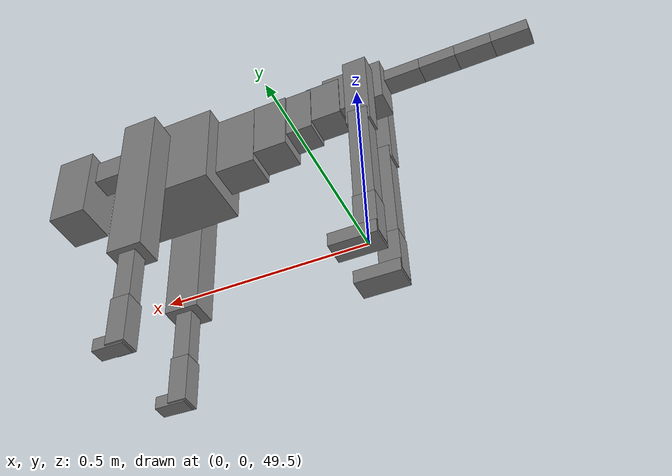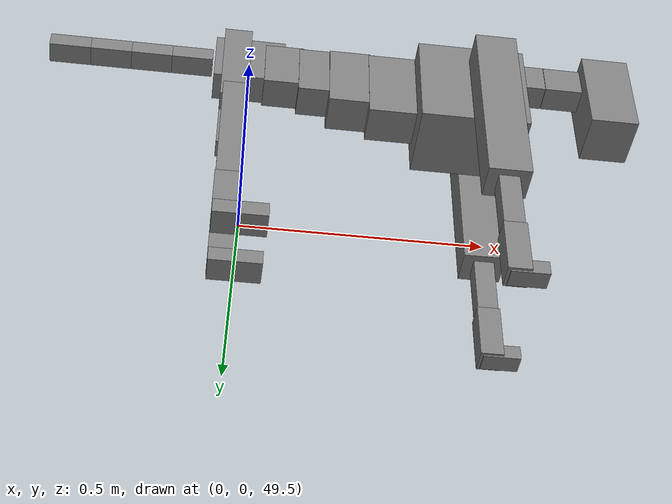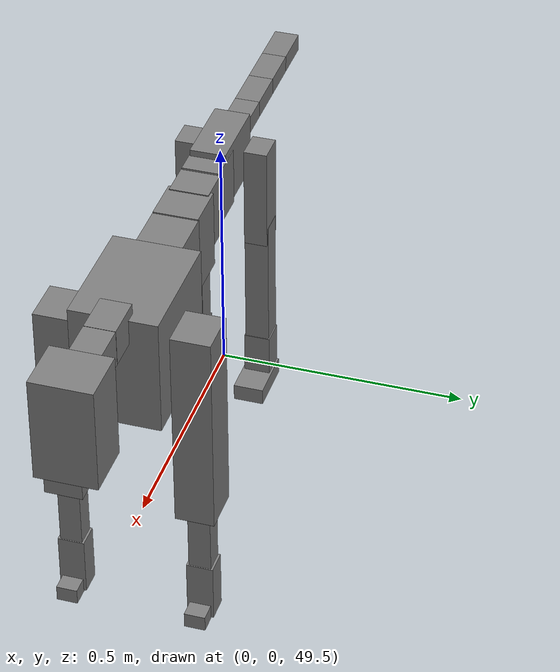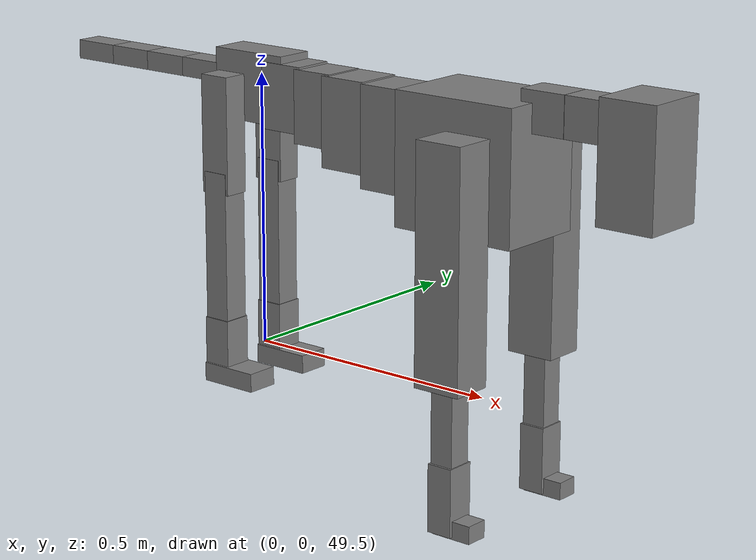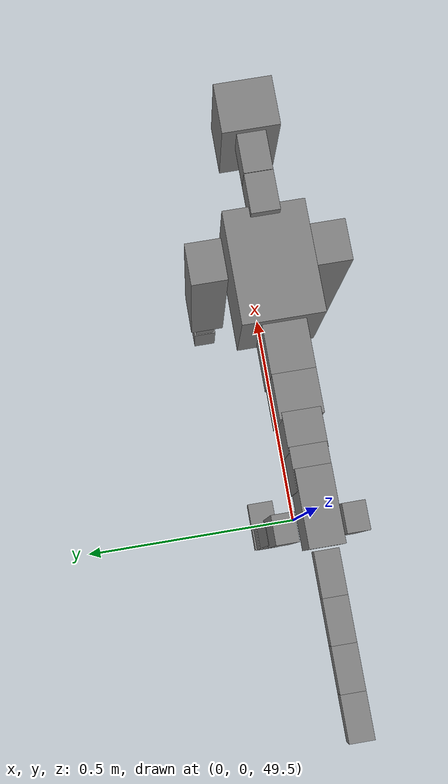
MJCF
<mujoco model="dog">

    <default>
        <joint armature="0.02" stiffness="1" damping="0.2" limited="true"/>
        <geom condim="3" friction="1 0.05 0.05" margin="0.01"/>
        <motor ctrllimited="true" ctrlrange="-1.0 1.0" forcelimited="true" gear="50"/>
    </default>

    <compiler inertiafromgeom="true" angle="radian"/>

    <option timestep="0.016" iterations="50" tolerance="1e-10" solver="Newton" jacobian="dense" cone="pyramidal"/>

    <size nconmax="20000" njmax="60000" nstack="5000000"/>
    <visual>
        <map force="0.1" zfar="30"/>
        <rgba haze="0.15 0.25 0.35 1"/>
        <quality shadowsize="2048"/>
        <global offwidth="800" offheight="800"/>
    </visual>

    <asset>
        <texture type="skybox" builtin="gradient" rgb1="0.3 0.5 0.7" rgb2="0 0 0" width="512" height="512"/>
        <texture name="texplane" type="2d" builtin="checker" rgb1=".2 .3 .4" rgb2=".1 0.15 0.2" width="512" height="512"
                 mark="cross" markrgb=".8 .8 .8"/>
        <texture name="texgeom" type="cube" builtin="flat" mark="cross" width="127" height="1278" rgb1="0.8 0.6 0.4"
                 rgb2="0.8 0.6 0.4" markrgb="1 1 1" random="0.01"/>

        <material name="matplane" reflectance="0.3" texture="texplane" texrepeat="1 1" texuniform="true"/>
        <material name="matgeom" texture="texgeom" texuniform="true" rgba="0.8 0.6 .4 1"/>
    </asset>

    <worldbody>
        <geom name="floor" pos="0 0 0" size="0 0 .25" type="plane" material="matplane" condim="3"/>

        <light directional="false" diffuse=".2 .2 .2" specular="0 0 0" pos="0 0 5" dir="0 0 -1" castshadow="false"/>
        <light mode="targetbodycom" target="torso" directional="false" diffuse=".8 .8 .8" specular="0.3 0.3 0.3"
               pos="0 0 4.0" dir="0 0 -1"/>

        <body name="root" pos="0 0 50">
            <freejoint name="root_1"/>
            <geom type="box" pos="0 0 -0.02" size="0.0774  0.0358  0.063" density="2030"/>

            <body name="spine1" pos="0.054 0 0">
                <joint name="spine1_y" axis="0 1 0" range="0 0.7" limited="true"/>
                <geom type="box" pos="0.02375 0 -0.03" size="0.04375  0.0375  0.05985" density="2030"/>

                <body name="spine2" pos="0.0612 0 0">
                    <joint name="spine2_y" axis="0 1 0" range="-0.15 0.15" limited="true"/>
                    <geom type="box" pos="0.03555  0  -0.04" size="0.04055  0.039  0.06615" density="2030"/>

                    <body name="spine3" pos="0.0730 0 0">
                        <joint name="spine3_y" axis="0 1 0" range="-0.15 0.15" limited="true"/>
                        <geom type="box" pos="0.03555  0  -0.057" size="0.04555  0.0445  0.081" density="2030"/>

                        <body name="spine4" pos="0.0780 0 0">
                            <joint name="spine4_y" axis="0 1 0" range="-0.15 0.15" limited="true"/>
                            <geom type="box" pos="0.05265  0  -0.07" size="0.05265  0.045  0.09135" density="2030"/>

                            <body name="torso" pos="0.1082 0 0">
                                <joint name="torso_y" axis="0 1 0" range="-0.15 0.15" limited="true"/>
                                <geom type="box" pos="0.11925  0  -0.085" size="0.11925  0.085  0.11745"
                                      density="2030"/>

                                <body name="neck1" pos="0.2160  0   0.0180">
                                    <joint name="neck1_y" axis="0 1 0" range="-1.2  -1" limited="true"/>
                                    <geom type="box" pos="0.0423  0  0" size="0.0423  0.03  0.036" density="2325"/>

                                    <body name="neck2" pos="0.0853  0  0">
                                        <joint name="neck2_y" axis="0 1 0" range="0.1  0" limited="true"/>
                                        <geom type="box" pos="0.0423  0  0" size="0.0423  0.03  0.036" density="2325"/>

                                        <body name="head" pos="0.0853  0  0">
                                            <joint name="head_y" axis="0 1 0" range="-0.3  -0.2" limited="true"/>
                                            <geom type="box" pos="0.0531  0  -0.055" size="0.0531  0.06  0.1044"
                                                  density="4030"/>

                                        </body>
                                    </body>
                                </body>

                                <body name="front_shoulder" pos="0.156  0   -0.0480">
                                    <joint name="front_shoulder_y" axis="0 1 0" range="-1 1.5" limited="true"/>
                                    <geom type="box" pos="0 0.13 -0.1828" size="0.0449  0.0384  0.2094" density="1158"/>
                                    <geom type="box" pos="0 -0.13 -0.1828" size="0.0449  0.0384  0.2094"
                                          density="1158"/>

                                    <body name="front_elbow" pos="0  0  -0.3655">
                                        <joint name="front_elbow_y" axis="0 1 0" range="-2 0" limited="true"/>
                                        <geom type="box" pos="0 0.13 -0.0857" size="0.0216  0.0221  0.0857"
                                              density="1081"/>
                                        <geom type="box" pos="0 -0.13 -0.0857" size="0.0216  0.0221  0.0857"
                                              density="1081"/>

                                        <body name="front_wrist" pos="0  0  -0.1713">
                                            <joint name="front_wrist_y" axis="0 1 0" range="-0.2 0" limited="true"/>
                                            <geom type="box" pos="0 0.13 -0.0473" size="0.0239  0.0265  0.0605"
                                                  density="1664"/>
                                            <geom type="box" pos="0 -0.13 -0.0473" size="0.0239  0.0265  0.0605"
                                                  density="1664"/>

                                            <body name="front_finger_end" pos="0  0  -0.0947">
                                                <joint name="front_finger_y" axis="0 1 0" range="-0.4 1"
                                                       limited="true"/>
                                                <geom type="box" pos="0.0210  0.13  -0.0008"
                                                      size="0.0385  0.0210  0.0158" density="1515"/>
                                                <geom type="box" pos="0.0210  -0.13  -0.0008"
                                                      size="0.0385  0.0210  0.0158" density="1515"/>

                                            </body>

                                        </body>
                                    </body>
                                </body>

                            </body>
                        </body>
                    </body>
                </body>
            </body>

            <body name="back_hip" pos="-0.03 0 -0.018">
                <joint name="back_hip_y" axis="0 1 0" range="-1.5 0.3" limited="true"/>
                <geom type="box" pos="0 0.07 -0.0840" size="0.0297  0.0233  0.1068" density="1154"/>
                <geom type="box" pos="0 -0.07 -0.0840" size="0.0297  0.0233  0.1068" density="1154"/>

                <body name="back_knee" pos="0  0  -0.1679">
                    <joint name="back_knee_y" axis="0 1 0" range="0 2.8" limited="true"/>
                    <geom type="box" pos="0 0.07 -0.1335" size="0.0246  0.0242  0.1490" density="1227"/>
                    <geom type="box" pos="0 -0.07 -0.1335" size="0.0246  0.0242  0.1490" density="1227"/>

                    <body name="back_ankle" pos="0  0  -0.2670">
                        <joint name="back_ankle_y" axis="0 1 0" range="-2.2 0" limited="true"/>
                        <geom type="box" pos="0 0.07 -0.0447" size="0.0264  0.0264  0.0560" density="1284"/>
                        <geom type="box" pos="0 -0.07 -0.0447" size="0.0264  0.0264  0.0560" density="1284"/>

                        <body name="back_toe_end" pos="0  0  -0.0895">
                            <joint name="back_toe_y" axis="0 1 0" range="-0.4 1" limited="true"/>
                            <geom type="box" pos="0.0305  0.07  -0.0020" size="0.0559  0.0305  0.0170" density="1515"/>
                            <geom type="box" pos="0.0305  -0.07  -0.0020" size="0.0559  0.0305  0.0170" density="1515"/>

                        </body>
                    </body>
                </body>
            </body>

            <body name="tail1" pos="-0.074 0 -0.006">
                <joint name="tail1_y" axis="0 1 0" range="-0.2 0.2" limited="true"/>
                <geom type="box" pos="-0.0536  0  0" size="0.045  0.025  0.0175" density="1587"/>

                <body name="tail2" pos="-0.09 0 0">
                    <joint name="tail2_y" axis="0 1 0" range="-0.2 0.2" limited="true"/>
                    <geom type="box" pos="-0.0536  0  0" size="0.045  0.025  0.0175" density="1587"/>

                    <body name="tail3" pos="-0.09 0 0">
                        <joint name="tail3_y" axis="0 1 0" range="-0.2 0.2" limited="true"/>
                        <geom type="box" pos="-0.0536  0  0" size="0.045  0.025  0.0175" density="1587"/>

                        <body name="tail4" pos="-0.09 0 0">
                            <joint name="tail4_y" axis="0 1 0" range="-0.2 0.2" limited="true"/>
                            <geom type="box" pos="-0.0536  0  0" size="0.045  0.025  0.0175" density="1587"/>

                        </body>
                    </body>
                </body>
            </body>
        </body>
    </worldbody>

    <actuator>
        <motor joint="spine1_y" forcerange="-150 150     "/>
        <motor joint="spine2_y" forcerange="-150 150     "/>
        <motor joint="spine3_y" forcerange="-150 150     "/>
        <motor joint="spine4_y" forcerange="-150 150     "/>
        <motor joint="torso_y" forcerange="-150 150     "/>
        <motor joint="neck1_y" forcerange="-100 100       "/>
        <motor joint="neck2_y" forcerange="-100 100       "/>
        <motor joint="head_y" forcerange="-150 150       "/>
        <motor joint="front_shoulder_y" forcerange="-191.02 164.70"/>
        <motor joint="front_elbow_y" forcerange="-117.14 143.45"/>
        <motor joint="front_wrist_y" forcerange="-95.40 116.88"/>
        <motor joint="front_finger_y" forcerange="-44.16 27.91"/>
        <motor joint="back_hip_y" forcerange="-296.93 213.31"/>
        <motor joint="back_knee_y" forcerange="-313.57 238.89"/>
        <motor joint="back_angle_y" forcerange="-166.89 155.22"/>
        <motor joint="back_toe_y" forcerange="-26.77 137.18"/>
        <motor joint="tail1_y" forcerange="-50 50     "/>
        <motor joint="tail2_y" forcerange="-50 50     "/>
        <motor joint="tail3_y" forcerange="-50 50     "/>
        <motor joint="tail4_y" forcerange="-50 50     "/>
    </actuator>
</mujoco>
